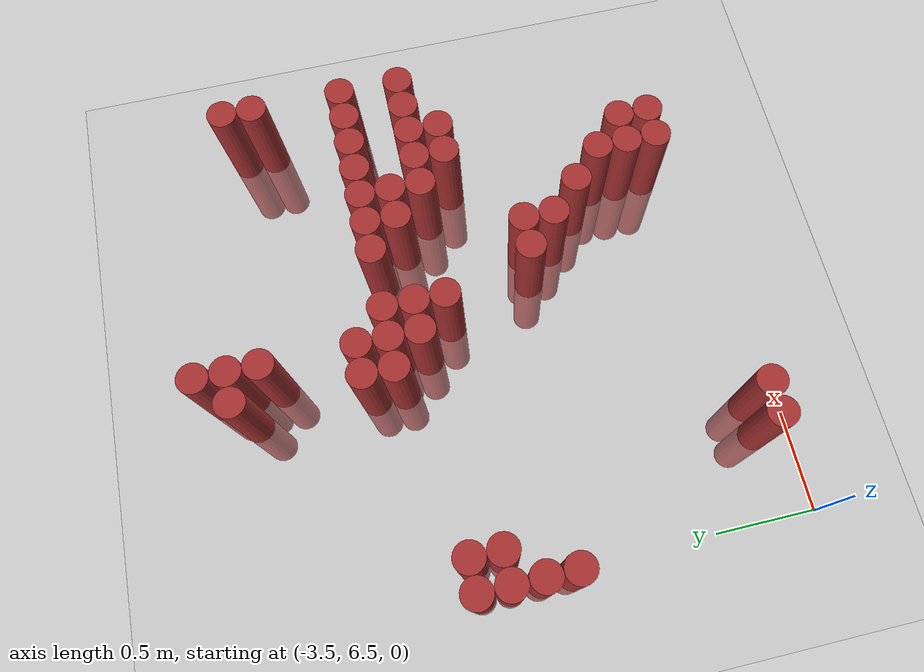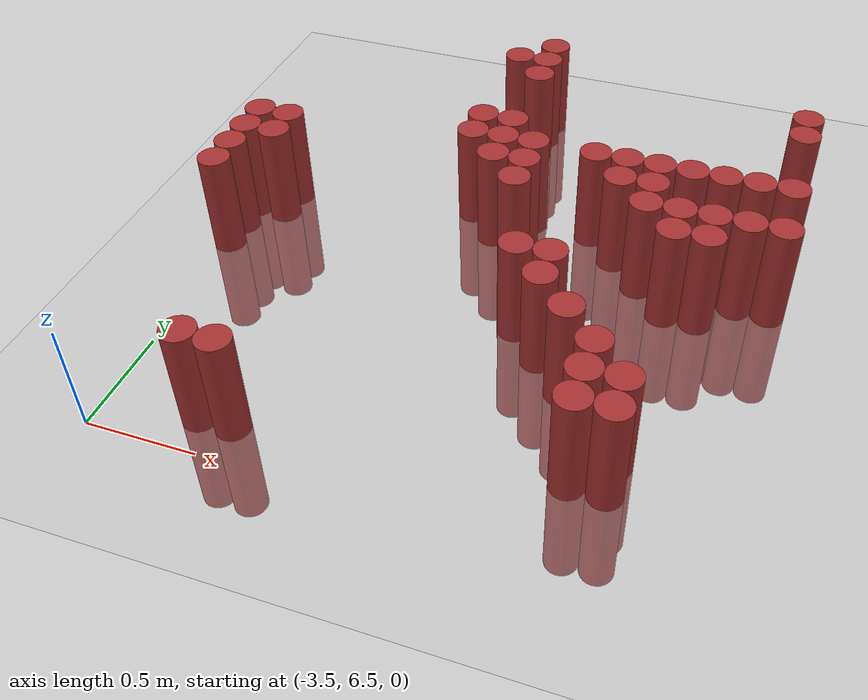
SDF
<sdf version="1.6">
 <world name="default">
  <model name="ground_plane">
   <static>1</static>
   <link name="link">
    <collision name="collision">
     <geometry><plane><normal>0 0 1</normal><size>100 100</size></plane></geometry>
     <surface><friction><ode><mu>100</mu><mu2>50</mu2></ode></friction></surface>
    </collision>
    <visual name="visual">
     <cast_shadows>0</cast_shadows>
     <geometry><plane><normal>0 0 1</normal><size>100 100</size></plane></geometry>
     <material>
      <script><uri>file://media/materials/scripts/gazebo.material</uri><name>Gazebo/Grey</name></script>
     </material>
    </visual>
   </link>
  </model>
  <model name="unit_cylinder_163">
   <static>1</static>
   <pose>-3.525000 7.725000 0.000000 0.000000 0.000000 0.000000</pose>
   <link name="link">
    <inertial>
     <mass>1</mass>
     <inertia><ixx>0.145833</ixx><ixy>0</ixy><ixz>0</ixz><iyy>0.145833</iyy><iyz>0</iyz><izz>0.125</izz></inertia>
    </inertial>
    <collision name="collision">
     <geometry><cylinder><radius>0.075000</radius><length>1</length></cylinder></geometry>
    </collision>
    <visual name="visual">
     <geometry><cylinder><radius>0.075000</radius><length>1</length></cylinder></geometry>
     <material>
      <ambient>0.648000 0.192000 0.192000 1</ambient>
      <diffuse>0.648000 0.192000 0.192000 1</diffuse>
     </material>
     <material>
      <script><name>Gazebo/Grey</name><uri>file://media/materials/scripts/gazebo.material</uri></script>
     </material>
    </visual>
   </link>
  </model>
  <model name="unit_cylinder_164">
   <static>1</static>
   <pose>-3.525000 7.875000 0.000000 0.000000 0.000000 0.000000</pose>
   <link name="link">
    <inertial>
     <mass>1</mass>
     <inertia><ixx>0.145833</ixx><ixy>0</ixy><ixz>0</ixz><iyy>0.145833</iyy><iyz>0</iyz><izz>0.125</izz></inertia>
    </inertial>
    <collision name="collision">
     <geometry><cylinder><radius>0.075000</radius><length>1</length></cylinder></geometry>
    </collision>
    <visual name="visual">
     <geometry><cylinder><radius>0.075000</radius><length>1</length></cylinder></geometry>
     <material>
      <ambient>0.648000 0.192000 0.192000 1</ambient>
      <diffuse>0.648000 0.192000 0.192000 1</diffuse>
     </material>
     <material>
      <script><name>Gazebo/Grey</name><uri>file://media/materials/scripts/gazebo.material</uri></script>
     </material>
    </visual>
   </link>
  </model>
  <model name="unit_cylinder_165">
   <static>1</static>
   <pose>-3.525000 8.025000 0.000000 0.000000 0.000000 0.000000</pose>
   <link name="link">
    <inertial>
     <mass>1</mass>
     <inertia><ixx>0.145833</ixx><ixy>0</ixy><ixz>0</ixz><iyy>0.145833</iyy><iyz>0</iyz><izz>0.125</izz></inertia>
    </inertial>
    <collision name="collision">
     <geometry><cylinder><radius>0.075000</radius><length>1</length></cylinder></geometry>
    </collision>
    <visual name="visual">
     <geometry><cylinder><radius>0.075000</radius><length>1</length></cylinder></geometry>
     <material>
      <ambient>0.648000 0.192000 0.192000 1</ambient>
      <diffuse>0.648000 0.192000 0.192000 1</diffuse>
     </material>
     <material>
      <script><name>Gazebo/Grey</name><uri>file://media/materials/scripts/gazebo.material</uri></script>
     </material>
    </visual>
   </link>
  </model>
  <model name="unit_cylinder_166">
   <static>1</static>
   <pose>-3.525000 8.175000 0.000000 0.000000 0.000000 0.000000</pose>
   <link name="link">
    <inertial>
     <mass>1</mass>
     <inertia><ixx>0.145833</ixx><ixy>0</ixy><ixz>0</ixz><iyy>0.145833</iyy><iyz>0</iyz><izz>0.125</izz></inertia>
    </inertial>
    <collision name="collision">
     <geometry><cylinder><radius>0.075000</radius><length>1</length></cylinder></geometry>
    </collision>
    <visual name="visual">
     <geometry><cylinder><radius>0.075000</radius><length>1</length></cylinder></geometry>
     <material>
      <ambient>0.648000 0.192000 0.192000 1</ambient>
      <diffuse>0.648000 0.192000 0.192000 1</diffuse>
     </material>
     <material>
      <script><name>Gazebo/Grey</name><uri>file://media/materials/scripts/gazebo.material</uri></script>
     </material>
    </visual>
   </link>
  </model>
  <model name="unit_cylinder_169">
   <static>1</static>
   <pose>-3.375000 8.025000 0.000000 0.000000 0.000000 0.000000</pose>
   <link name="link">
    <inertial>
     <mass>1</mass>
     <inertia><ixx>0.145833</ixx><ixy>0</ixy><ixz>0</ixz><iyy>0.145833</iyy><iyz>0</iyz><izz>0.125</izz></inertia>
    </inertial>
    <collision name="collision">
     <geometry><cylinder><radius>0.075000</radius><length>1</length></cylinder></geometry>
    </collision>
    <visual name="visual">
     <geometry><cylinder><radius>0.075000</radius><length>1</length></cylinder></geometry>
     <material>
      <ambient>0.648000 0.192000 0.192000 1</ambient>
      <diffuse>0.648000 0.192000 0.192000 1</diffuse>
     </material>
     <material>
      <script><name>Gazebo/Grey</name><uri>file://media/materials/scripts/gazebo.material</uri></script>
     </material>
    </visual>
   </link>
  </model>
  <model name="unit_cylinder_170">
   <static>1</static>
   <pose>-3.375000 8.175000 0.000000 0.000000 0.000000 0.000000</pose>
   <link name="link">
    <inertial>
     <mass>1</mass>
     <inertia><ixx>0.145833</ixx><ixy>0</ixy><ixz>0</ixz><iyy>0.145833</iyy><iyz>0</iyz><izz>0.125</izz></inertia>
    </inertial>
    <collision name="collision">
     <geometry><cylinder><radius>0.075000</radius><length>1</length></cylinder></geometry>
    </collision>
    <visual name="visual">
     <geometry><cylinder><radius>0.075000</radius><length>1</length></cylinder></geometry>
     <material>
      <ambient>0.648000 0.192000 0.192000 1</ambient>
      <diffuse>0.648000 0.192000 0.192000 1</diffuse>
     </material>
     <material>
      <script><name>Gazebo/Grey</name><uri>file://media/materials/scripts/gazebo.material</uri></script>
     </material>
    </visual>
   </link>
  </model>
  <model name="unit_cylinder_172">
   <static>1</static>
   <pose>-3.075000 6.675000 0.000000 0.000000 0.000000 0.000000</pose>
   <link name="link">
    <inertial>
     <mass>1</mass>
     <inertia><ixx>0.145833</ixx><ixy>0</ixy><ixz>0</ixz><iyy>0.145833</iyy><iyz>0</iyz><izz>0.125</izz></inertia>
    </inertial>
    <collision name="collision">
     <geometry><cylinder><radius>0.075000</radius><length>1</length></cylinder></geometry>
    </collision>
    <visual name="visual">
     <geometry><cylinder><radius>0.075000</radius><length>1</length></cylinder></geometry>
     <material>
      <ambient>0.648000 0.192000 0.192000 1</ambient>
      <diffuse>0.648000 0.192000 0.192000 1</diffuse>
     </material>
     <material>
      <script><name>Gazebo/Grey</name><uri>file://media/materials/scripts/gazebo.material</uri></script>
     </material>
    </visual>
   </link>
  </model>
  <model name="unit_cylinder_173">
   <static>1</static>
   <pose>-2.925000 6.675000 0.000000 0.000000 0.000000 0.000000</pose>
   <link name="link">
    <inertial>
     <mass>1</mass>
     <inertia><ixx>0.145833</ixx><ixy>0</ixy><ixz>0</ixz><iyy>0.145833</iyy><iyz>0</iyz><izz>0.125</izz></inertia>
    </inertial>
    <collision name="collision">
     <geometry><cylinder><radius>0.075000</radius><length>1</length></cylinder></geometry>
    </collision>
    <visual name="visual">
     <geometry><cylinder><radius>0.075000</radius><length>1</length></cylinder></geometry>
     <material>
      <ambient>0.648000 0.192000 0.192000 1</ambient>
      <diffuse>0.648000 0.192000 0.192000 1</diffuse>
     </material>
     <material>
      <script><name>Gazebo/Grey</name><uri>file://media/materials/scripts/gazebo.material</uri></script>
     </material>
    </visual>
   </link>
  </model>
  <model name="unit_cylinder_174">
   <static>1</static>
   <pose>-2.475000 8.325000 0.000000 0.000000 0.000000 0.000000</pose>
   <link name="link">
    <inertial>
     <mass>1</mass>
     <inertia><ixx>0.145833</ixx><ixy>0</ixy><ixz>0</ixz><iyy>0.145833</iyy><iyz>0</iyz><izz>0.125</izz></inertia>
    </inertial>
    <collision name="collision">
     <geometry><cylinder><radius>0.075000</radius><length>1</length></cylinder></geometry>
    </collision>
    <visual name="visual">
     <geometry><cylinder><radius>0.075000</radius><length>1</length></cylinder></geometry>
     <material>
      <ambient>0.648000 0.192000 0.192000 1</ambient>
      <diffuse>0.648000 0.192000 0.192000 1</diffuse>
     </material>
     <material>
      <script><name>Gazebo/Grey</name><uri>file://media/materials/scripts/gazebo.material</uri></script>
     </material>
    </visual>
   </link>
  </model>
  <model name="unit_cylinder_175">
   <static>1</static>
   <pose>-2.475000 8.475000 0.000000 0.000000 0.000000 0.000000</pose>
   <link name="link">
    <inertial>
     <mass>1</mass>
     <inertia><ixx>0.145833</ixx><ixy>0</ixy><ixz>0</ixz><iyy>0.145833</iyy><iyz>0</iyz><izz>0.125</izz></inertia>
    </inertial>
    <collision name="collision">
     <geometry><cylinder><radius>0.075000</radius><length>1</length></cylinder></geometry>
    </collision>
    <visual name="visual">
     <geometry><cylinder><radius>0.075000</radius><length>1</length></cylinder></geometry>
     <material>
      <ambient>0.648000 0.192000 0.192000 1</ambient>
      <diffuse>0.648000 0.192000 0.192000 1</diffuse>
     </material>
     <material>
      <script><name>Gazebo/Grey</name><uri>file://media/materials/scripts/gazebo.material</uri></script>
     </material>
    </visual>
   </link>
  </model>
  <model name="unit_cylinder_176">
   <static>1</static>
   <pose>-2.475000 9.075000 0.000000 0.000000 0.000000 0.000000</pose>
   <link name="link">
    <inertial>
     <mass>1</mass>
     <inertia><ixx>0.145833</ixx><ixy>0</ixy><ixz>0</ixz><iyy>0.145833</iyy><iyz>0</iyz><izz>0.125</izz></inertia>
    </inertial>
    <collision name="collision">
     <geometry><cylinder><radius>0.075000</radius><length>1</length></cylinder></geometry>
    </collision>
    <visual name="visual">
     <geometry><cylinder><radius>0.075000</radius><length>1</length></cylinder></geometry>
     <material>
      <ambient>0.648000 0.192000 0.192000 1</ambient>
      <diffuse>0.648000 0.192000 0.192000 1</diffuse>
     </material>
     <material>
      <script><name>Gazebo/Grey</name><uri>file://media/materials/scripts/gazebo.material</uri></script>
     </material>
    </visual>
   </link>
  </model>
  <model name="unit_cylinder_177">
   <static>1</static>
   <pose>-2.325000 8.175000 0.000000 0.000000 0.000000 0.000000</pose>
   <link name="link">
    <inertial>
     <mass>1</mass>
     <inertia><ixx>0.145833</ixx><ixy>0</ixy><ixz>0</ixz><iyy>0.145833</iyy><iyz>0</iyz><izz>0.125</izz></inertia>
    </inertial>
    <collision name="collision">
     <geometry><cylinder><radius>0.075000</radius><length>1</length></cylinder></geometry>
    </collision>
    <visual name="visual">
     <geometry><cylinder><radius>0.075000</radius><length>1</length></cylinder></geometry>
     <material>
      <ambient>0.648000 0.192000 0.192000 1</ambient>
      <diffuse>0.648000 0.192000 0.192000 1</diffuse>
     </material>
     <material>
      <script><name>Gazebo/Grey</name><uri>file://media/materials/scripts/gazebo.material</uri></script>
     </material>
    </visual>
   </link>
  </model>
  <model name="unit_cylinder_178">
   <static>1</static>
   <pose>-2.325000 8.325000 0.000000 0.000000 0.000000 0.000000</pose>
   <link name="link">
    <inertial>
     <mass>1</mass>
     <inertia><ixx>0.145833</ixx><ixy>0</ixy><ixz>0</ixz><iyy>0.145833</iyy><iyz>0</iyz><izz>0.125</izz></inertia>
    </inertial>
    <collision name="collision">
     <geometry><cylinder><radius>0.075000</radius><length>1</length></cylinder></geometry>
    </collision>
    <visual name="visual">
     <geometry><cylinder><radius>0.075000</radius><length>1</length></cylinder></geometry>
     <material>
      <ambient>0.648000 0.192000 0.192000 1</ambient>
      <diffuse>0.648000 0.192000 0.192000 1</diffuse>
     </material>
     <material>
      <script><name>Gazebo/Grey</name><uri>file://media/materials/scripts/gazebo.material</uri></script>
     </material>
    </visual>
   </link>
  </model>
  <model name="unit_cylinder_179">
   <static>1</static>
   <pose>-2.325000 8.475000 0.000000 0.000000 0.000000 0.000000</pose>
   <link name="link">
    <inertial>
     <mass>1</mass>
     <inertia><ixx>0.145833</ixx><ixy>0</ixy><ixz>0</ixz><iyy>0.145833</iyy><iyz>0</iyz><izz>0.125</izz></inertia>
    </inertial>
    <collision name="collision">
     <geometry><cylinder><radius>0.075000</radius><length>1</length></cylinder></geometry>
    </collision>
    <visual name="visual">
     <geometry><cylinder><radius>0.075000</radius><length>1</length></cylinder></geometry>
     <material>
      <ambient>0.648000 0.192000 0.192000 1</ambient>
      <diffuse>0.648000 0.192000 0.192000 1</diffuse>
     </material>
     <material>
      <script><name>Gazebo/Grey</name><uri>file://media/materials/scripts/gazebo.material</uri></script>
     </material>
    </visual>
   </link>
  </model>
  <model name="unit_cylinder_180">
   <static>1</static>
   <pose>-2.325000 8.925000 0.000000 0.000000 0.000000 0.000000</pose>
   <link name="link">
    <inertial>
     <mass>1</mass>
     <inertia><ixx>0.145833</ixx><ixy>0</ixy><ixz>0</ixz><iyy>0.145833</iyy><iyz>0</iyz><izz>0.125</izz></inertia>
    </inertial>
    <collision name="collision">
     <geometry><cylinder><radius>0.075000</radius><length>1</length></cylinder></geometry>
    </collision>
    <visual name="visual">
     <geometry><cylinder><radius>0.075000</radius><length>1</length></cylinder></geometry>
     <material>
      <ambient>0.648000 0.192000 0.192000 1</ambient>
      <diffuse>0.648000 0.192000 0.192000 1</diffuse>
     </material>
     <material>
      <script><name>Gazebo/Grey</name><uri>file://media/materials/scripts/gazebo.material</uri></script>
     </material>
    </visual>
   </link>
  </model>
  <model name="unit_cylinder_181">
   <static>1</static>
   <pose>-2.325000 9.075000 0.000000 0.000000 0.000000 0.000000</pose>
   <link name="link">
    <inertial>
     <mass>1</mass>
     <inertia><ixx>0.145833</ixx><ixy>0</ixy><ixz>0</ixz><iyy>0.145833</iyy><iyz>0</iyz><izz>0.125</izz></inertia>
    </inertial>
    <collision name="collision">
     <geometry><cylinder><radius>0.075000</radius><length>1</length></cylinder></geometry>
    </collision>
    <visual name="visual">
     <geometry><cylinder><radius>0.075000</radius><length>1</length></cylinder></geometry>
     <material>
      <ambient>0.648000 0.192000 0.192000 1</ambient>
      <diffuse>0.648000 0.192000 0.192000 1</diffuse>
     </material>
     <material>
      <script><name>Gazebo/Grey</name><uri>file://media/materials/scripts/gazebo.material</uri></script>
     </material>
    </visual>
   </link>
  </model>
  <model name="unit_cylinder_182">
   <static>1</static>
   <pose>-2.325000 9.225000 0.000000 0.000000 0.000000 0.000000</pose>
   <link name="link">
    <inertial>
     <mass>1</mass>
     <inertia><ixx>0.145833</ixx><ixy>0</ixy><ixz>0</ixz><iyy>0.145833</iyy><iyz>0</iyz><izz>0.125</izz></inertia>
    </inertial>
    <collision name="collision">
     <geometry><cylinder><radius>0.075000</radius><length>1</length></cylinder></geometry>
    </collision>
    <visual name="visual">
     <geometry><cylinder><radius>0.075000</radius><length>1</length></cylinder></geometry>
     <material>
      <ambient>0.648000 0.192000 0.192000 1</ambient>
      <diffuse>0.648000 0.192000 0.192000 1</diffuse>
     </material>
     <material>
      <script><name>Gazebo/Grey</name><uri>file://media/materials/scripts/gazebo.material</uri></script>
     </material>
    </visual>
   </link>
  </model>
  <model name="unit_cylinder_183">
   <static>1</static>
   <pose>-2.175000 8.025000 0.000000 0.000000 0.000000 0.000000</pose>
   <link name="link">
    <inertial>
     <mass>1</mass>
     <inertia><ixx>0.145833</ixx><ixy>0</ixy><ixz>0</ixz><iyy>0.145833</iyy><iyz>0</iyz><izz>0.125</izz></inertia>
    </inertial>
    <collision name="collision">
     <geometry><cylinder><radius>0.075000</radius><length>1</length></cylinder></geometry>
    </collision>
    <visual name="visual">
     <geometry><cylinder><radius>0.075000</radius><length>1</length></cylinder></geometry>
     <material>
      <ambient>0.648000 0.192000 0.192000 1</ambient>
      <diffuse>0.648000 0.192000 0.192000 1</diffuse>
     </material>
     <material>
      <script><name>Gazebo/Grey</name><uri>file://media/materials/scripts/gazebo.material</uri></script>
     </material>
    </visual>
   </link>
  </model>
  <model name="unit_cylinder_184">
   <static>1</static>
   <pose>-2.175000 8.175000 0.000000 0.000000 0.000000 0.000000</pose>
   <link name="link">
    <inertial>
     <mass>1</mass>
     <inertia><ixx>0.145833</ixx><ixy>0</ixy><ixz>0</ixz><iyy>0.145833</iyy><iyz>0</iyz><izz>0.125</izz></inertia>
    </inertial>
    <collision name="collision">
     <geometry><cylinder><radius>0.075000</radius><length>1</length></cylinder></geometry>
    </collision>
    <visual name="visual">
     <geometry><cylinder><radius>0.075000</radius><length>1</length></cylinder></geometry>
     <material>
      <ambient>0.648000 0.192000 0.192000 1</ambient>
      <diffuse>0.648000 0.192000 0.192000 1</diffuse>
     </material>
     <material>
      <script><name>Gazebo/Grey</name><uri>file://media/materials/scripts/gazebo.material</uri></script>
     </material>
    </visual>
   </link>
  </model>
  <model name="unit_cylinder_185">
   <static>1</static>
   <pose>-2.175000 8.325000 0.000000 0.000000 0.000000 0.000000</pose>
   <link name="link">
    <inertial>
     <mass>1</mass>
     <inertia><ixx>0.145833</ixx><ixy>0</ixy><ixz>0</ixz><iyy>0.145833</iyy><iyz>0</iyz><izz>0.125</izz></inertia>
    </inertial>
    <collision name="collision">
     <geometry><cylinder><radius>0.075000</radius><length>1</length></cylinder></geometry>
    </collision>
    <visual name="visual">
     <geometry><cylinder><radius>0.075000</radius><length>1</length></cylinder></geometry>
     <material>
      <ambient>0.648000 0.192000 0.192000 1</ambient>
      <diffuse>0.648000 0.192000 0.192000 1</diffuse>
     </material>
     <material>
      <script><name>Gazebo/Grey</name><uri>file://media/materials/scripts/gazebo.material</uri></script>
     </material>
    </visual>
   </link>
  </model>
  <model name="unit_cylinder_190">
   <static>1</static>
   <pose>-2.025000 7.575000 0.000000 0.000000 0.000000 0.000000</pose>
   <link name="link">
    <inertial>
     <mass>1</mass>
     <inertia><ixx>0.145833</ixx><ixy>0</ixy><ixz>0</ixz><iyy>0.145833</iyy><iyz>0</iyz><izz>0.125</izz></inertia>
    </inertial>
    <collision name="collision">
     <geometry><cylinder><radius>0.075000</radius><length>1</length></cylinder></geometry>
    </collision>
    <visual name="visual">
     <geometry><cylinder><radius>0.075000</radius><length>1</length></cylinder></geometry>
     <material>
      <ambient>0.648000 0.192000 0.192000 1</ambient>
      <diffuse>0.648000 0.192000 0.192000 1</diffuse>
     </material>
     <material>
      <script><name>Gazebo/Grey</name><uri>file://media/materials/scripts/gazebo.material</uri></script>
     </material>
    </visual>
   </link>
  </model>
  <model name="unit_cylinder_194">
   <static>1</static>
   <pose>-1.875000 7.425000 0.000000 0.000000 0.000000 0.000000</pose>
   <link name="link">
    <inertial>
     <mass>1</mass>
     <inertia><ixx>0.145833</ixx><ixy>0</ixy><ixz>0</ixz><iyy>0.145833</iyy><iyz>0</iyz><izz>0.125</izz></inertia>
    </inertial>
    <collision name="collision">
     <geometry><cylinder><radius>0.075000</radius><length>1</length></cylinder></geometry>
    </collision>
    <visual name="visual">
     <geometry><cylinder><radius>0.075000</radius><length>1</length></cylinder></geometry>
     <material>
      <ambient>0.648000 0.192000 0.192000 1</ambient>
      <diffuse>0.648000 0.192000 0.192000 1</diffuse>
     </material>
     <material>
      <script><name>Gazebo/Grey</name><uri>file://media/materials/scripts/gazebo.material</uri></script>
     </material>
    </visual>
   </link>
  </model>
  <model name="unit_cylinder_195">
   <static>1</static>
   <pose>-1.875000 7.575000 0.000000 0.000000 0.000000 0.000000</pose>
   <link name="link">
    <inertial>
     <mass>1</mass>
     <inertia><ixx>0.145833</ixx><ixy>0</ixy><ixz>0</ixz><iyy>0.145833</iyy><iyz>0</iyz><izz>0.125</izz></inertia>
    </inertial>
    <collision name="collision">
     <geometry><cylinder><radius>0.075000</radius><length>1</length></cylinder></geometry>
    </collision>
    <visual name="visual">
     <geometry><cylinder><radius>0.075000</radius><length>1</length></cylinder></geometry>
     <material>
      <ambient>0.648000 0.192000 0.192000 1</ambient>
      <diffuse>0.648000 0.192000 0.192000 1</diffuse>
     </material>
     <material>
      <script><name>Gazebo/Grey</name><uri>file://media/materials/scripts/gazebo.material</uri></script>
     </material>
    </visual>
   </link>
  </model>
  <model name="unit_cylinder_196">
   <static>1</static>
   <pose>-1.875000 8.325000 0.000000 0.000000 0.000000 0.000000</pose>
   <link name="link">
    <inertial>
     <mass>1</mass>
     <inertia><ixx>0.145833</ixx><ixy>0</ixy><ixz>0</ixz><iyy>0.145833</iyy><iyz>0</iyz><izz>0.125</izz></inertia>
    </inertial>
    <collision name="collision">
     <geometry><cylinder><radius>0.075000</radius><length>1</length></cylinder></geometry>
    </collision>
    <visual name="visual">
     <geometry><cylinder><radius>0.075000</radius><length>1</length></cylinder></geometry>
     <material>
      <ambient>0.648000 0.192000 0.192000 1</ambient>
      <diffuse>0.648000 0.192000 0.192000 1</diffuse>
     </material>
     <material>
      <script><name>Gazebo/Grey</name><uri>file://media/materials/scripts/gazebo.material</uri></script>
     </material>
    </visual>
   </link>
  </model>
  <model name="unit_cylinder_197">
   <static>1</static>
   <pose>-1.725000 7.275000 0.000000 0.000000 0.000000 0.000000</pose>
   <link name="link">
    <inertial>
     <mass>1</mass>
     <inertia><ixx>0.145833</ixx><ixy>0</ixy><ixz>0</ixz><iyy>0.145833</iyy><iyz>0</iyz><izz>0.125</izz></inertia>
    </inertial>
    <collision name="collision">
     <geometry><cylinder><radius>0.075000</radius><length>1</length></cylinder></geometry>
    </collision>
    <visual name="visual">
     <geometry><cylinder><radius>0.075000</radius><length>1</length></cylinder></geometry>
     <material>
      <ambient>0.648000 0.192000 0.192000 1</ambient>
      <diffuse>0.648000 0.192000 0.192000 1</diffuse>
     </material>
     <material>
      <script><name>Gazebo/Grey</name><uri>file://media/materials/scripts/gazebo.material</uri></script>
     </material>
    </visual>
   </link>
  </model>
  <model name="unit_cylinder_198">
   <static>1</static>
   <pose>-1.725000 8.175000 0.000000 0.000000 0.000000 0.000000</pose>
   <link name="link">
    <inertial>
     <mass>1</mass>
     <inertia><ixx>0.145833</ixx><ixy>0</ixy><ixz>0</ixz><iyy>0.145833</iyy><iyz>0</iyz><izz>0.125</izz></inertia>
    </inertial>
    <collision name="collision">
     <geometry><cylinder><radius>0.075000</radius><length>1</length></cylinder></geometry>
    </collision>
    <visual name="visual">
     <geometry><cylinder><radius>0.075000</radius><length>1</length></cylinder></geometry>
     <material>
      <ambient>0.648000 0.192000 0.192000 1</ambient>
      <diffuse>0.648000 0.192000 0.192000 1</diffuse>
     </material>
     <material>
      <script><name>Gazebo/Grey</name><uri>file://media/materials/scripts/gazebo.material</uri></script>
     </material>
    </visual>
   </link>
  </model>
  <model name="unit_cylinder_199">
   <static>1</static>
   <pose>-1.725000 8.325000 0.000000 0.000000 0.000000 0.000000</pose>
   <link name="link">
    <inertial>
     <mass>1</mass>
     <inertia><ixx>0.145833</ixx><ixy>0</ixy><ixz>0</ixz><iyy>0.145833</iyy><iyz>0</iyz><izz>0.125</izz></inertia>
    </inertial>
    <collision name="collision">
     <geometry><cylinder><radius>0.075000</radius><length>1</length></cylinder></geometry>
    </collision>
    <visual name="visual">
     <geometry><cylinder><radius>0.075000</radius><length>1</length></cylinder></geometry>
     <material>
      <ambient>0.648000 0.192000 0.192000 1</ambient>
      <diffuse>0.648000 0.192000 0.192000 1</diffuse>
     </material>
     <material>
      <script><name>Gazebo/Grey</name><uri>file://media/materials/scripts/gazebo.material</uri></script>
     </material>
    </visual>
   </link>
  </model>
  <model name="unit_cylinder_200">
   <static>1</static>
   <pose>-1.575000 6.825000 0.000000 0.000000 0.000000 0.000000</pose>
   <link name="link">
    <inertial>
     <mass>1</mass>
     <inertia><ixx>0.145833</ixx><ixy>0</ixy><ixz>0</ixz><iyy>0.145833</iyy><iyz>0</iyz><izz>0.125</izz></inertia>
    </inertial>
    <collision name="collision">
     <geometry><cylinder><radius>0.075000</radius><length>1</length></cylinder></geometry>
    </collision>
    <visual name="visual">
     <geometry><cylinder><radius>0.075000</radius><length>1</length></cylinder></geometry>
     <material>
      <ambient>0.648000 0.192000 0.192000 1</ambient>
      <diffuse>0.648000 0.192000 0.192000 1</diffuse>
     </material>
     <material>
      <script><name>Gazebo/Grey</name><uri>file://media/materials/scripts/gazebo.material</uri></script>
     </material>
    </visual>
   </link>
  </model>
  <model name="unit_cylinder_201">
   <static>1</static>
   <pose>-1.575000 6.975000 0.000000 0.000000 0.000000 0.000000</pose>
   <link name="link">
    <inertial>
     <mass>1</mass>
     <inertia><ixx>0.145833</ixx><ixy>0</ixy><ixz>0</ixz><iyy>0.145833</iyy><iyz>0</iyz><izz>0.125</izz></inertia>
    </inertial>
    <collision name="collision">
     <geometry><cylinder><radius>0.075000</radius><length>1</length></cylinder></geometry>
    </collision>
    <visual name="visual">
     <geometry><cylinder><radius>0.075000</radius><length>1</length></cylinder></geometry>
     <material>
      <ambient>0.648000 0.192000 0.192000 1</ambient>
      <diffuse>0.648000 0.192000 0.192000 1</diffuse>
     </material>
     <material>
      <script><name>Gazebo/Grey</name><uri>file://media/materials/scripts/gazebo.material</uri></script>
     </material>
    </visual>
   </link>
  </model>
  <model name="unit_cylinder_202">
   <static>1</static>
   <pose>-1.575000 7.125000 0.000000 0.000000 0.000000 0.000000</pose>
   <link name="link">
    <inertial>
     <mass>1</mass>
     <inertia><ixx>0.145833</ixx><ixy>0</ixy><ixz>0</ixz><iyy>0.145833</iyy><iyz>0</iyz><izz>0.125</izz></inertia>
    </inertial>
    <collision name="collision">
     <geometry><cylinder><radius>0.075000</radius><length>1</length></cylinder></geometry>
    </collision>
    <visual name="visual">
     <geometry><cylinder><radius>0.075000</radius><length>1</length></cylinder></geometry>
     <material>
      <ambient>0.648000 0.192000 0.192000 1</ambient>
      <diffuse>0.648000 0.192000 0.192000 1</diffuse>
     </material>
     <material>
      <script><name>Gazebo/Grey</name><uri>file://media/materials/scripts/gazebo.material</uri></script>
     </material>
    </visual>
   </link>
  </model>
  <model name="unit_cylinder_203">
   <static>1</static>
   <pose>-1.575000 8.025000 0.000000 0.000000 0.000000 0.000000</pose>
   <link name="link">
    <inertial>
     <mass>1</mass>
     <inertia><ixx>0.145833</ixx><ixy>0</ixy><ixz>0</ixz><iyy>0.145833</iyy><iyz>0</iyz><izz>0.125</izz></inertia>
    </inertial>
    <collision name="collision">
     <geometry><cylinder><radius>0.075000</radius><length>1</length></cylinder></geometry>
    </collision>
    <visual name="visual">
     <geometry><cylinder><radius>0.075000</radius><length>1</length></cylinder></geometry>
     <material>
      <ambient>0.648000 0.192000 0.192000 1</ambient>
      <diffuse>0.648000 0.192000 0.192000 1</diffuse>
     </material>
     <material>
      <script><name>Gazebo/Grey</name><uri>file://media/materials/scripts/gazebo.material</uri></script>
     </material>
    </visual>
   </link>
  </model>
  <model name="unit_cylinder_204">
   <static>1</static>
   <pose>-1.575000 8.175000 0.000000 0.000000 0.000000 0.000000</pose>
   <link name="link">
    <inertial>
     <mass>1</mass>
     <inertia><ixx>0.145833</ixx><ixy>0</ixy><ixz>0</ixz><iyy>0.145833</iyy><iyz>0</iyz><izz>0.125</izz></inertia>
    </inertial>
    <collision name="collision">
     <geometry><cylinder><radius>0.075000</radius><length>1</length></cylinder></geometry>
    </collision>
    <visual name="visual">
     <geometry><cylinder><radius>0.075000</radius><length>1</length></cylinder></geometry>
     <material>
      <ambient>0.648000 0.192000 0.192000 1</ambient>
      <diffuse>0.648000 0.192000 0.192000 1</diffuse>
     </material>
     <material>
      <script><name>Gazebo/Grey</name><uri>file://media/materials/scripts/gazebo.material</uri></script>
     </material>
    </visual>
   </link>
  </model>
  <model name="unit_cylinder_205">
   <static>1</static>
   <pose>-1.575000 8.325000 0.000000 0.000000 0.000000 0.000000</pose>
   <link name="link">
    <inertial>
     <mass>1</mass>
     <inertia><ixx>0.145833</ixx><ixy>0</ixy><ixz>0</ixz><iyy>0.145833</iyy><iyz>0</iyz><izz>0.125</izz></inertia>
    </inertial>
    <collision name="collision">
     <geometry><cylinder><radius>0.075000</radius><length>1</length></cylinder></geometry>
    </collision>
    <visual name="visual">
     <geometry><cylinder><radius>0.075000</radius><length>1</length></cylinder></geometry>
     <material>
      <ambient>0.648000 0.192000 0.192000 1</ambient>
      <diffuse>0.648000 0.192000 0.192000 1</diffuse>
     </material>
     <material>
      <script><name>Gazebo/Grey</name><uri>file://media/materials/scripts/gazebo.material</uri></script>
     </material>
    </visual>
   </link>
  </model>
  <model name="unit_cylinder_206">
   <static>1</static>
   <pose>-1.425000 6.825000 0.000000 0.000000 0.000000 0.000000</pose>
   <link name="link">
    <inertial>
     <mass>1</mass>
     <inertia><ixx>0.145833</ixx><ixy>0</ixy><ixz>0</ixz><iyy>0.145833</iyy><iyz>0</iyz><izz>0.125</izz></inertia>
    </inertial>
    <collision name="collision">
     <geometry><cylinder><radius>0.075000</radius><length>1</length></cylinder></geometry>
    </collision>
    <visual name="visual">
     <geometry><cylinder><radius>0.075000</radius><length>1</length></cylinder></geometry>
     <material>
      <ambient>0.648000 0.192000 0.192000 1</ambient>
      <diffuse>0.648000 0.192000 0.192000 1</diffuse>
     </material>
     <material>
      <script><name>Gazebo/Grey</name><uri>file://media/materials/scripts/gazebo.material</uri></script>
     </material>
    </visual>
   </link>
  </model>
  <model name="unit_cylinder_207">
   <static>1</static>
   <pose>-1.425000 6.975000 0.000000 0.000000 0.000000 0.000000</pose>
   <link name="link">
    <inertial>
     <mass>1</mass>
     <inertia><ixx>0.145833</ixx><ixy>0</ixy><ixz>0</ixz><iyy>0.145833</iyy><iyz>0</iyz><izz>0.125</izz></inertia>
    </inertial>
    <collision name="collision">
     <geometry><cylinder><radius>0.075000</radius><length>1</length></cylinder></geometry>
    </collision>
    <visual name="visual">
     <geometry><cylinder><radius>0.075000</radius><length>1</length></cylinder></geometry>
     <material>
      <ambient>0.648000 0.192000 0.192000 1</ambient>
      <diffuse>0.648000 0.192000 0.192000 1</diffuse>
     </material>
     <material>
      <script><name>Gazebo/Grey</name><uri>file://media/materials/scripts/gazebo.material</uri></script>
     </material>
    </visual>
   </link>
  </model>
  <model name="unit_cylinder_208">
   <static>1</static>
   <pose>-1.425000 7.875000 0.000000 0.000000 0.000000 0.000000</pose>
   <link name="link">
    <inertial>
     <mass>1</mass>
     <inertia><ixx>0.145833</ixx><ixy>0</ixy><ixz>0</ixz><iyy>0.145833</iyy><iyz>0</iyz><izz>0.125</izz></inertia>
    </inertial>
    <collision name="collision">
     <geometry><cylinder><radius>0.075000</radius><length>1</length></cylinder></geometry>
    </collision>
    <visual name="visual">
     <geometry><cylinder><radius>0.075000</radius><length>1</length></cylinder></geometry>
     <material>
      <ambient>0.648000 0.192000 0.192000 1</ambient>
      <diffuse>0.648000 0.192000 0.192000 1</diffuse>
     </material>
     <material>
      <script><name>Gazebo/Grey</name><uri>file://media/materials/scripts/gazebo.material</uri></script>
     </material>
    </visual>
   </link>
  </model>
  <model name="unit_cylinder_209">
   <static>1</static>
   <pose>-1.425000 8.025000 0.000000 0.000000 0.000000 0.000000</pose>
   <link name="link">
    <inertial>
     <mass>1</mass>
     <inertia><ixx>0.145833</ixx><ixy>0</ixy><ixz>0</ixz><iyy>0.145833</iyy><iyz>0</iyz><izz>0.125</izz></inertia>
    </inertial>
    <collision name="collision">
     <geometry><cylinder><radius>0.075000</radius><length>1</length></cylinder></geometry>
    </collision>
    <visual name="visual">
     <geometry><cylinder><radius>0.075000</radius><length>1</length></cylinder></geometry>
     <material>
      <ambient>0.648000 0.192000 0.192000 1</ambient>
      <diffuse>0.648000 0.192000 0.192000 1</diffuse>
     </material>
     <material>
      <script><name>Gazebo/Grey</name><uri>file://media/materials/scripts/gazebo.material</uri></script>
     </material>
    </visual>
   </link>
  </model>
  <model name="unit_cylinder_210">
   <static>1</static>
   <pose>-1.425000 8.325000 0.000000 0.000000 0.000000 0.000000</pose>
   <link name="link">
    <inertial>
     <mass>1</mass>
     <inertia><ixx>0.145833</ixx><ixy>0</ixy><ixz>0</ixz><iyy>0.145833</iyy><iyz>0</iyz><izz>0.125</izz></inertia>
    </inertial>
    <collision name="collision">
     <geometry><cylinder><radius>0.075000</radius><length>1</length></cylinder></geometry>
    </collision>
    <visual name="visual">
     <geometry><cylinder><radius>0.075000</radius><length>1</length></cylinder></geometry>
     <material>
      <ambient>0.648000 0.192000 0.192000 1</ambient>
      <diffuse>0.648000 0.192000 0.192000 1</diffuse>
     </material>
     <material>
      <script><name>Gazebo/Grey</name><uri>file://media/materials/scripts/gazebo.material</uri></script>
     </material>
    </visual>
   </link>
  </model>
  <model name="unit_cylinder_211">
   <static>1</static>
   <pose>-1.275000 7.875000 0.000000 0.000000 0.000000 0.000000</pose>
   <link name="link">
    <inertial>
     <mass>1</mass>
     <inertia><ixx>0.145833</ixx><ixy>0</ixy><ixz>0</ixz><iyy>0.145833</iyy><iyz>0</iyz><izz>0.125</izz></inertia>
    </inertial>
    <collision name="collision">
     <geometry><cylinder><radius>0.075000</radius><length>1</length></cylinder></geometry>
    </collision>
    <visual name="visual">
     <geometry><cylinder><radius>0.075000</radius><length>1</length></cylinder></geometry>
     <material>
      <ambient>0.648000 0.192000 0.192000 1</ambient>
      <diffuse>0.648000 0.192000 0.192000 1</diffuse>
     </material>
     <material>
      <script><name>Gazebo/Grey</name><uri>file://media/materials/scripts/gazebo.material</uri></script>
     </material>
    </visual>
   </link>
  </model>
  <model name="unit_cylinder_212">
   <static>1</static>
   <pose>-1.275000 8.025000 0.000000 0.000000 0.000000 0.000000</pose>
   <link name="link">
    <inertial>
     <mass>1</mass>
     <inertia><ixx>0.145833</ixx><ixy>0</ixy><ixz>0</ixz><iyy>0.145833</iyy><iyz>0</iyz><izz>0.125</izz></inertia>
    </inertial>
    <collision name="collision">
     <geometry><cylinder><radius>0.075000</radius><length>1</length></cylinder></geometry>
    </collision>
    <visual name="visual">
     <geometry><cylinder><radius>0.075000</radius><length>1</length></cylinder></geometry>
     <material>
      <ambient>0.648000 0.192000 0.192000 1</ambient>
      <diffuse>0.648000 0.192000 0.192000 1</diffuse>
     </material>
     <material>
      <script><name>Gazebo/Grey</name><uri>file://media/materials/scripts/gazebo.material</uri></script>
     </material>
    </visual>
   </link>
  </model>
  <model name="unit_cylinder_213">
   <static>1</static>
   <pose>-1.275000 8.325000 0.000000 0.000000 0.000000 0.000000</pose>
   <link name="link">
    <inertial>
     <mass>1</mass>
     <inertia><ixx>0.145833</ixx><ixy>0</ixy><ixz>0</ixz><iyy>0.145833</iyy><iyz>0</iyz><izz>0.125</izz></inertia>
    </inertial>
    <collision name="collision">
     <geometry><cylinder><radius>0.075000</radius><length>1</length></cylinder></geometry>
    </collision>
    <visual name="visual">
     <geometry><cylinder><radius>0.075000</radius><length>1</length></cylinder></geometry>
     <material>
      <ambient>0.648000 0.192000 0.192000 1</ambient>
      <diffuse>0.648000 0.192000 0.192000 1</diffuse>
     </material>
     <material>
      <script><name>Gazebo/Grey</name><uri>file://media/materials/scripts/gazebo.material</uri></script>
     </material>
    </visual>
   </link>
  </model>
  <model name="unit_cylinder_214">
   <static>1</static>
   <pose>-1.125000 8.025000 0.000000 0.000000 0.000000 0.000000</pose>
   <link name="link">
    <inertial>
     <mass>1</mass>
     <inertia><ixx>0.145833</ixx><ixy>0</ixy><ixz>0</ixz><iyy>0.145833</iyy><iyz>0</iyz><izz>0.125</izz></inertia>
    </inertial>
    <collision name="collision">
     <geometry><cylinder><radius>0.075000</radius><length>1</length></cylinder></geometry>
    </collision>
    <visual name="visual">
     <geometry><cylinder><radius>0.075000</radius><length>1</length></cylinder></geometry>
     <material>
      <ambient>0.648000 0.192000 0.192000 1</ambient>
      <diffuse>0.648000 0.192000 0.192000 1</diffuse>
     </material>
     <material>
      <script><name>Gazebo/Grey</name><uri>file://media/materials/scripts/gazebo.material</uri></script>
     </material>
    </visual>
   </link>
  </model>
  <model name="unit_cylinder_215">
   <static>1</static>
   <pose>-1.125000 8.325000 0.000000 0.000000 0.000000 0.000000</pose>
   <link name="link">
    <inertial>
     <mass>1</mass>
     <inertia><ixx>0.145833</ixx><ixy>0</ixy><ixz>0</ixz><iyy>0.145833</iyy><iyz>0</iyz><izz>0.125</izz></inertia>
    </inertial>
    <collision name="collision">
     <geometry><cylinder><radius>0.075000</radius><length>1</length></cylinder></geometry>
    </collision>
    <visual name="visual">
     <geometry><cylinder><radius>0.075000</radius><length>1</length></cylinder></geometry>
     <material>
      <ambient>0.648000 0.192000 0.192000 1</ambient>
      <diffuse>0.648000 0.192000 0.192000 1</diffuse>
     </material>
     <material>
      <script><name>Gazebo/Grey</name><uri>file://media/materials/scripts/gazebo.material</uri></script>
     </material>
    </visual>
   </link>
  </model>
  <model name="unit_cylinder_216">
   <static>1</static>
   <pose>-0.975000 8.025000 0.000000 0.000000 0.000000 0.000000</pose>
   <link name="link">
    <inertial>
     <mass>1</mass>
     <inertia><ixx>0.145833</ixx><ixy>0</ixy><ixz>0</ixz><iyy>0.145833</iyy><iyz>0</iyz><izz>0.125</izz></inertia>
    </inertial>
    <collision name="collision">
     <geometry><cylinder><radius>0.075000</radius><length>1</length></cylinder></geometry>
    </collision>
    <visual name="visual">
     <geometry><cylinder><radius>0.075000</radius><length>1</length></cylinder></geometry>
     <material>
      <ambient>0.648000 0.192000 0.192000 1</ambient>
      <diffuse>0.648000 0.192000 0.192000 1</diffuse>
     </material>
     <material>
      <script><name>Gazebo/Grey</name><uri>file://media/materials/scripts/gazebo.material</uri></script>
     </material>
    </visual>
   </link>
  </model>
  <model name="unit_cylinder_217">
   <static>1</static>
   <pose>-0.975000 8.325000 0.000000 0.000000 0.000000 0.000000</pose>
   <link name="link">
    <inertial>
     <mass>1</mass>
     <inertia><ixx>0.145833</ixx><ixy>0</ixy><ixz>0</ixz><iyy>0.145833</iyy><iyz>0</iyz><izz>0.125</izz></inertia>
    </inertial>
    <collision name="collision">
     <geometry><cylinder><radius>0.075000</radius><length>1</length></cylinder></geometry>
    </collision>
    <visual name="visual">
     <geometry><cylinder><radius>0.075000</radius><length>1</length></cylinder></geometry>
     <material>
      <ambient>0.648000 0.192000 0.192000 1</ambient>
      <diffuse>0.648000 0.192000 0.192000 1</diffuse>
     </material>
     <material>
      <script><name>Gazebo/Grey</name><uri>file://media/materials/scripts/gazebo.material</uri></script>
     </material>
    </visual>
   </link>
  </model>
  <model name="unit_cylinder_218">
   <static>1</static>
   <pose>-0.975000 8.775000 0.000000 0.000000 0.000000 0.000000</pose>
   <link name="link">
    <inertial>
     <mass>1</mass>
     <inertia><ixx>0.145833</ixx><ixy>0</ixy><ixz>0</ixz><iyy>0.145833</iyy><iyz>0</iyz><izz>0.125</izz></inertia>
    </inertial>
    <collision name="collision">
     <geometry><cylinder><radius>0.075000</radius><length>1</length></cylinder></geometry>
    </collision>
    <visual name="visual">
     <geometry><cylinder><radius>0.075000</radius><length>1</length></cylinder></geometry>
     <material>
      <ambient>0.648000 0.192000 0.192000 1</ambient>
      <diffuse>0.648000 0.192000 0.192000 1</diffuse>
     </material>
     <material>
      <script><name>Gazebo/Grey</name><uri>file://media/materials/scripts/gazebo.material</uri></script>
     </material>
    </visual>
   </link>
  </model>
  <model name="unit_cylinder_219">
   <static>1</static>
   <pose>-0.975000 8.925000 0.000000 0.000000 0.000000 0.000000</pose>
   <link name="link">
    <inertial>
     <mass>1</mass>
     <inertia><ixx>0.145833</ixx><ixy>0</ixy><ixz>0</ixz><iyy>0.145833</iyy><iyz>0</iyz><izz>0.125</izz></inertia>
    </inertial>
    <collision name="collision">
     <geometry><cylinder><radius>0.075000</radius><length>1</length></cylinder></geometry>
    </collision>
    <visual name="visual">
     <geometry><cylinder><radius>0.075000</radius><length>1</length></cylinder></geometry>
     <material>
      <ambient>0.648000 0.192000 0.192000 1</ambient>
      <diffuse>0.648000 0.192000 0.192000 1</diffuse>
     </material>
     <material>
      <script><name>Gazebo/Grey</name><uri>file://media/materials/scripts/gazebo.material</uri></script>
     </material>
    </visual>
   </link>
  </model>
 </world>
</sdf>
